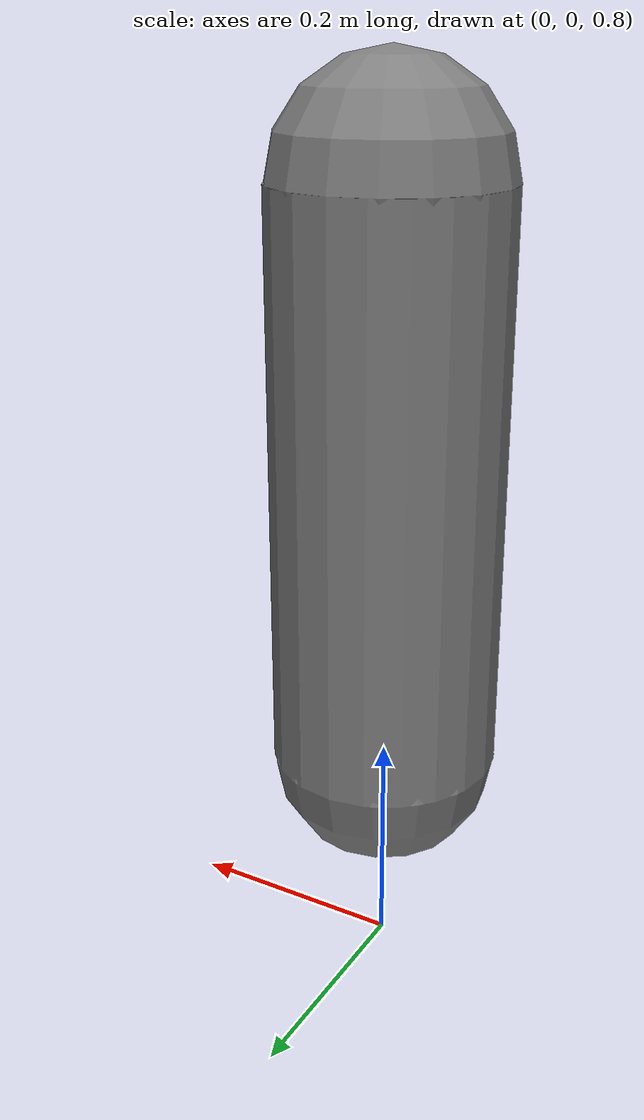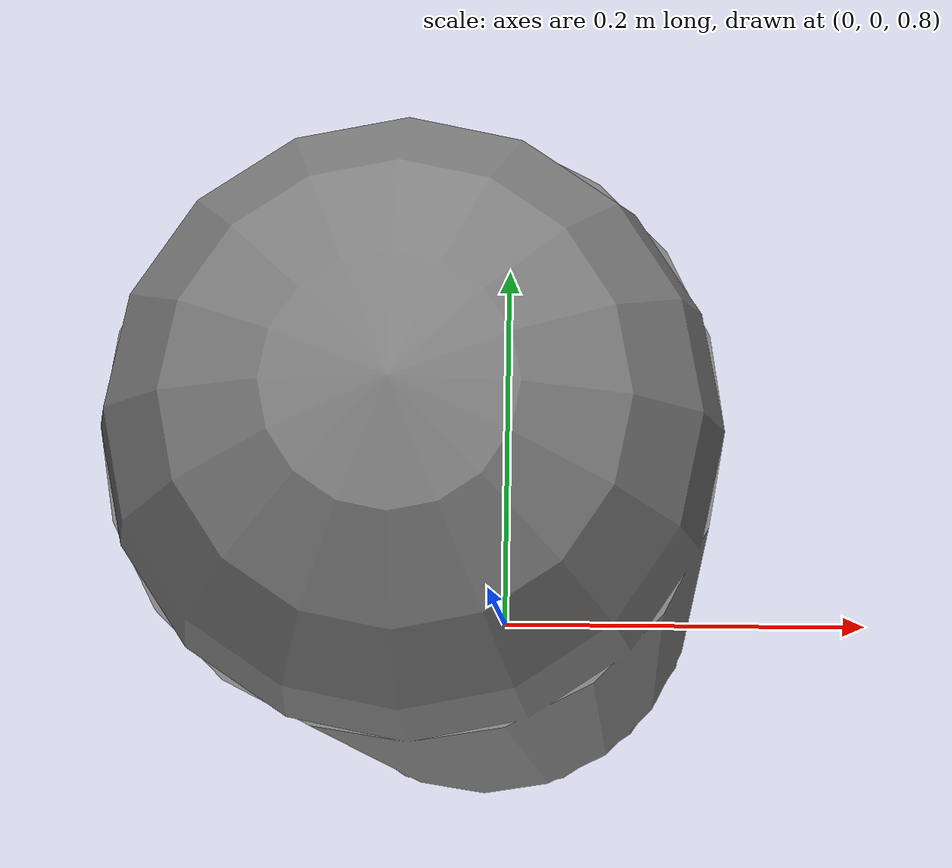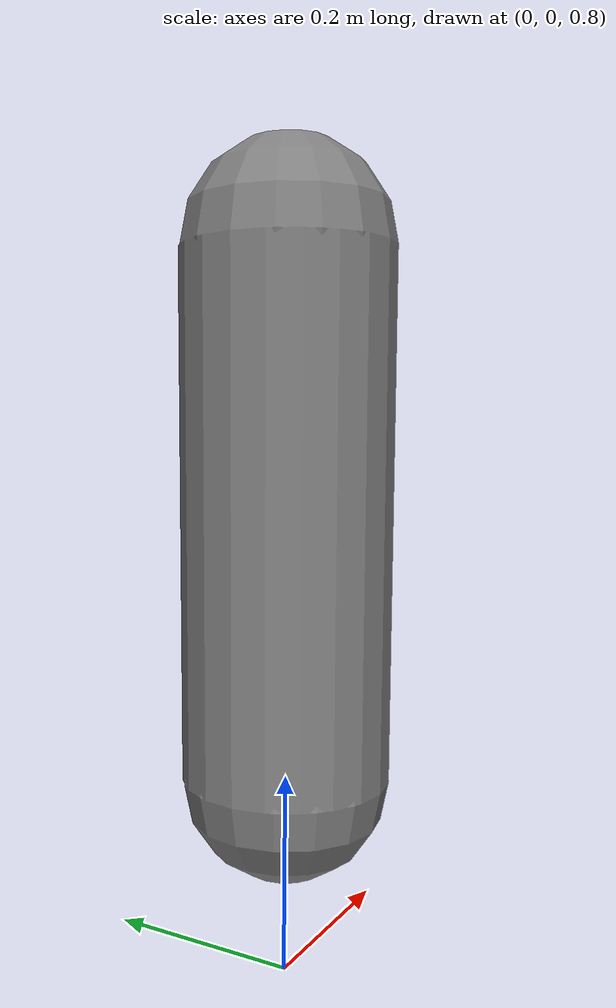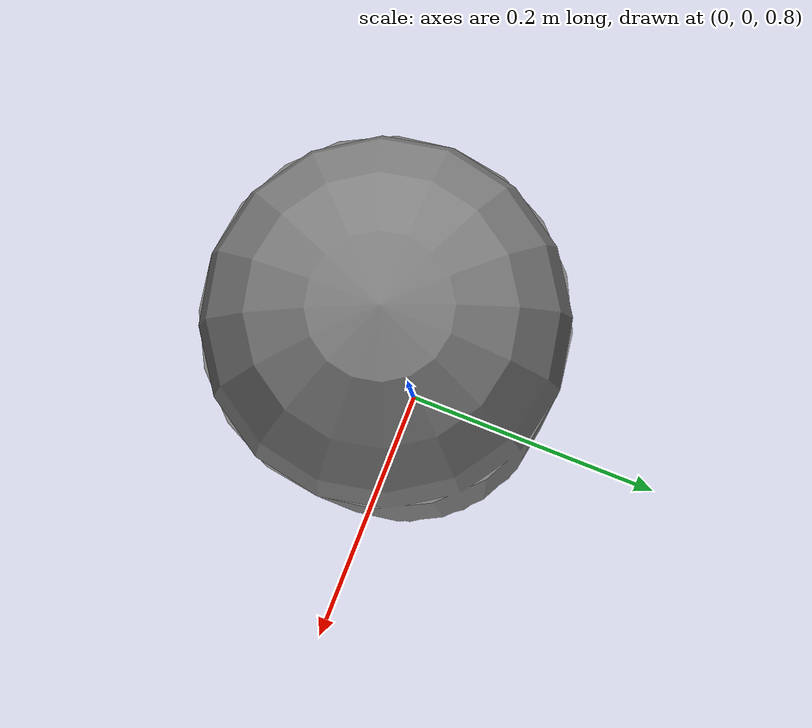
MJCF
<mujoco model="my_humanoid">
  <compiler angle="degree"/>
  <default>
    <joint armature="0.01" limited="true" damping="1"/>
    <geom friction="1 0.5 0.5" density="1000"/>
  </default>
  <worldbody>
    <body name="torso" pos="0 0 1.0">
      <joint name="root_x" type="slide" axis="1 0 0"/>
      <joint name="root_y" type="slide" axis="0 1 0"/>
      <joint name="root_z" type="hinge" axis="0 0 1"/>
      <geom name="torso_geom" type="capsule" fromto="0 0 0 0 0 0.5" size="0.1"/>
      <!-- Add limbs, joints, and geoms here -->
    </body>
  </worldbody>
  <actuator>
    <motor joint="root_x" ctrlrange="-150 150" gear="100"/>
    <motor joint="root_y" ctrlrange="-150 150" gear="100"/>
    <motor joint="root_z" ctrlrange="-150 150" gear="100"/>
  </actuator>
</mujoco>
